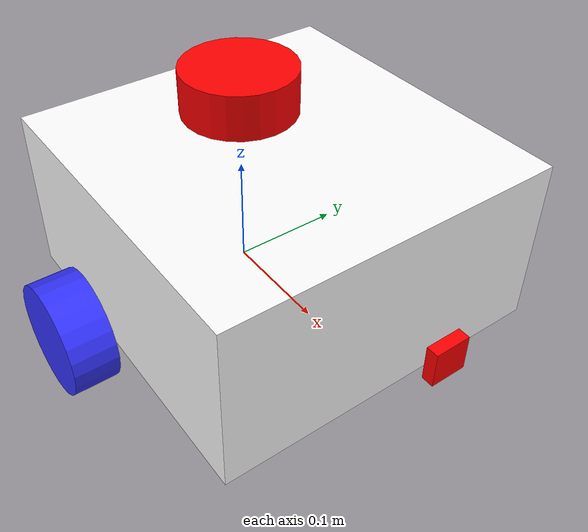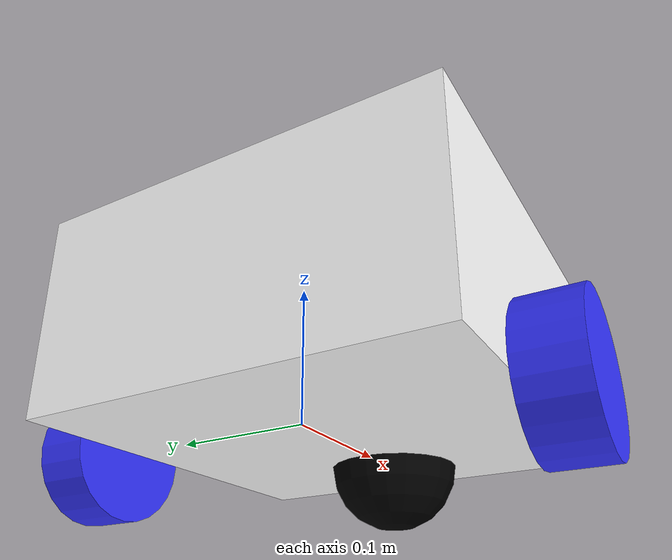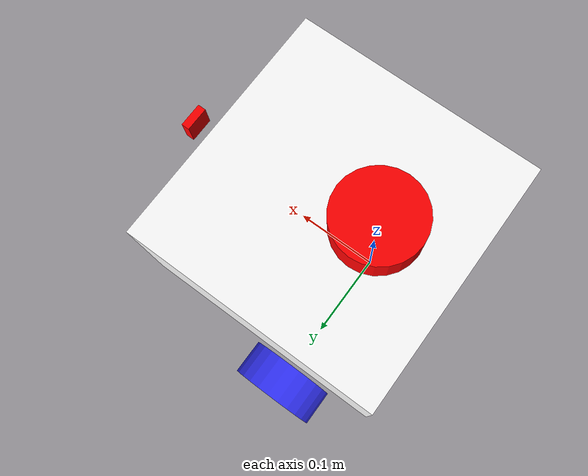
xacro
<?xml version="1.0"?>
<robot xmlns:xacro="http://www.ros.org/wiki/xacro"  name="robot">

    <xacro:include filename="robot_core.xacro" />

    <xacro:include filename="ros2_control.xacro" />

    <xacro:include filename="lidar.xacro" />

    <xacro:include filename="camera.xacro" />

</robot>

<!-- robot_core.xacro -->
<robot xmlns:xacro="http://www.ros.org/xacro" name="robot">

    <!-- Include the inertia file -->
    <xacro:include filename="inertial_macros.xacro"/>
    <!-- Need to sepcify the origin in the visual and not the joint -->

    <!-- MATERIAL DESCRIPTION -->
    <material name="white">
        <color rgba="1 1 1 1"/>
    </material>

    <material name="orange">
        <color rgba="1 0.3 0.1 1"/>
    </material>

    <material name="blue">
        <color rgba="0.2 0.2 1 1"/>
    </material>

    <material name="black">
        <color rgba="0 0 0 1"/>
    </material>

    <material name="red">
        <color rgba="1 0 0 1"/>
    </material>

    <!-- BASE LINK -->

    <!-- This will be at the center of the two drive wheels -->
    <link name="base_link">

    </link>

    <!-- CHASIS LINK -->
    <joint name="chassis_joint" type="fixed">
        <parent link="base_link" />
        <child link="chassis"/>
        <!-- change these values to see how much -0.1 is -->
        <!-- origin for the chasis is very back -->
        <origin xyz="-0.1 0 0"/>
    </joint>

    <link name="chassis">
        <visual>
            <origin xyz="0.15 0 0.075" />
            <geometry>
                <!-- This is in meters so convert -->
                <box size="0.3 0.3 0.15"/>
            </geometry>
            <material name="white"/>
        </visual>
        <!-- for collision copy paste from visual without material -->
        <collision>
            <origin xyz="0.15 0 0.075" />
            <geometry>
                <box size="0.3 0.3 0.15"/>
            </geometry>
        </collision>

        <xacro:inertial_box mass="0.5" x="0.3" y="0.3" z="0.15">
            <origin xyz="0.15 0 0.075" rpy="0 0 0"/>
        </xacro:inertial_box>
    </link>

    <!-- This is how to change the color of the wheels in gazebo -->
    <gazebo reference="chassis">
        <material>Gazebo/White</material>
    </gazebo>

    <!-- LEFT WHEEL LINK-->
    <joint name="left_wheel_joint" type="continuous">
        <parent link="base_link" />
        <child link="left_wheel"/>
        <!-- the rpy is rotating in -pi/2 -->
        <origin xyz="0 0.175 0" rpy="-${pi/2} 0 0"/>
        <!-- Specify the axis of rotation, so rotate about the x axis -->
        <axis xyz="0 0 1"/>
    </joint>

    <link name="left_wheel">
        <visual>
            <geometry>
                <cylinder radius="0.05" length="0.04"/>
            </geometry>
            <material name="blue"/>
        </visual>

        <collision>
            <geometry>
                <cylinder radius="0.05" length="0.04"/>
            </geometry>
        </collision>

        <xacro:inertial_cylinder mass="0.1" length="0.04" radius="0.05">
            <origin xyz="0 0 0" rpy="0 0 0"/>
        </xacro:inertial_cylinder>
    </link>

    <gazebo reference="left_wheel">
        <material>Gazebo/Blue</material>
    </gazebo>

    <!-- RIGHT WHEEL LINK-->
    <joint name="right_wheel_joint" type="continuous">
        <parent link="base_link" />
        <child link="right_wheel"/>
        <!-- the rpy is rotating in -pi/2 -->
        <origin xyz="0 -0.175 0" rpy="${pi/2} 0 0"/>
        <!-- Specify the axis of rotation, so rotate about the x axis -->
        <!-- need to make this negative otherwise the robot will spin opposite directions -->
        <axis xyz="0 0 -1"/>
    </joint>

    <link name="right_wheel">
        <visual>
            <geometry>
                <cylinder radius="0.05" length="0.04"/>
            </geometry>
            <material name="blue"/>
        </visual>

        <collision>
            <geometry>
                <cylinder radius="0.05" length="0.04"/>
            </geometry>
        </collision>

        <xacro:inertial_cylinder mass="0.1" length="0.04" radius="0.05">
            <origin xyz="0 0 0" rpy="0 0 0"/>
        </xacro:inertial_cylinder>
    </link>

    <gazebo reference="right_wheel">
        <material>Gazebo/Blue</material>
    </gazebo>

    <!-- CASTER WHEEL LINK-->
    <joint name="caster_wheel_joint" type="fixed">
        <parent link="chassis" />
        <child link="caster_wheel"/>
        <origin xyz="0.24 0 0" />

    </joint>

    <link name="caster_wheel">
        <visual>
            <geometry>
                <sphere radius="0.05"/>
            </geometry>
            <material name="black"/>
        </visual>

        <collision>
            <geometry>
                <sphere radius="0.05"/>
            </geometry>
        </collision>

        <xacro:inertial_sphere mass="0.1" radius="0.05">
            <origin xyz="0 0 0" rpy="0 0 0"/>
        </xacro:inertial_sphere>
    </link>

    <gazebo reference="caster_wheel">
        <material>Gazebo/Black</material>
        <!-- Now we have to change the friction coefficent to 0 so the robot doesnt bounce -->
        <mu1 value="0.001"/>
        <mu2 value="0.001"/>

    </gazebo>

</robot>

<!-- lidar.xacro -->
<robot xmlns:xacro="http://www.ros.org/wiki/xacro"  name="robot">

    <joint name="laser_joint" type="fixed">
        <parent link="chassis" />
        <child link="laser_frame"/>
        <origin xyz="0.1 0 0.175" rpy="0 0 0"/>

    </joint>

    <link name="laser_frame">
        <visual>
            <geometry>
                <cylinder radius="0.05" length="0.04"/>
            </geometry>
            <material name="red"/>
        </visual>

        <collision>
            <geometry>
                <cylinder radius="0.05" length="0.04"/>
            </geometry>
        </collision>

        <xacro:inertial_cylinder mass="0.1" length="0.04" radius="0.05">
            <origin xyz="0 0 0" rpy="0 0 0"/>
        </xacro:inertial_cylinder>
    </link>

    <gazebo reference="laser_frame">
        <material>Gazebo/Red</material>

        <sensor name="laser" type="ray">
            <pose> 0 0 0 0 0 0 </pose>
            <visualize>true</visualize>
            <update_rate>10</update_rate>
            <ray>
                <scan>
                    <horizontal>
                        <samples>360</samples>
                        <resolution>1</resolution>
                        <min_angle>-3.14</min_angle>
                        <max_angle>3.14</max_angle>
                    </horizontal>
                </scan>
                <range>
                    <min>0.3</min>
                    <max>12</max>
                    <resolution>0.1</resolution>
                </range>
            </ray>
            <plugin name="laser_controller" filename="libgazebo_ros_ray_sensor.so">
                <ros>
                    <argument>~/out:=scan</argument>
                </ros>
                <output_type>sensor_msgs/LaserScan</output_type>
                <frame_name>laser_frame</frame_name>
            </plugin>
        </sensor>
    </gazebo>

</robot>

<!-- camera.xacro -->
<robot xmlns:xacro="http://www.ros.org/wiki/xacro" >

    <joint name="camera_joint" type="fixed">
        <parent link="chassis"/>
        <child link="camera_link"/>
        <origin xyz="0.35 0 0.08" rpy="0 0 0"/>
    </joint>

    <link name="camera_link">
        <visual>
            <geometry>
                <box size="0.010 0.03 0.03 "/>
            </geometry>
            <material name="red"/>
        </visual>
    </link>

    <!-- Add joint to convert from ros coordinate system to camera coordinate system -->
    <joint name="camera_optical_joint" type="fixed">
        <parent link="camera_link"/>
        <child link="camera_link_optical"/>
        <!-- Has to be rotated to make it work -->
        <origin xyz="0 0 0 " rpy="${-pi/2} 0 ${-pi/2}"/>
    </joint>

    <link name="camera_link_optical">
    </link>

    <gazebo reference="camera_link">
        <material>Gazebo/Red</material>

        <sensor name="camera" type="camera">
            <pose> 0 0 0 0 0 0 </pose>
            <visualize>true</visualize>
            <update_rate>10</update_rate>
            <camera>
                <horizontal_fov>1.089</horizontal_fov>
                <image>
                    <format>R8G8B8</format>
                    <width>640</width>
                    <height>480</height>
                </image>
                <clip>
                    <near>0.05</near>
                    <far>8.0</far>
                </clip>
            </camera>
            <!-- Maybe change this -->
            <plugin name="camera_controller" filename="libgazebo_ros_camera.so">
                <frame_name>camera_link_optical</frame_name>
            </plugin>
        </sensor>
    </gazebo>

</robot>
